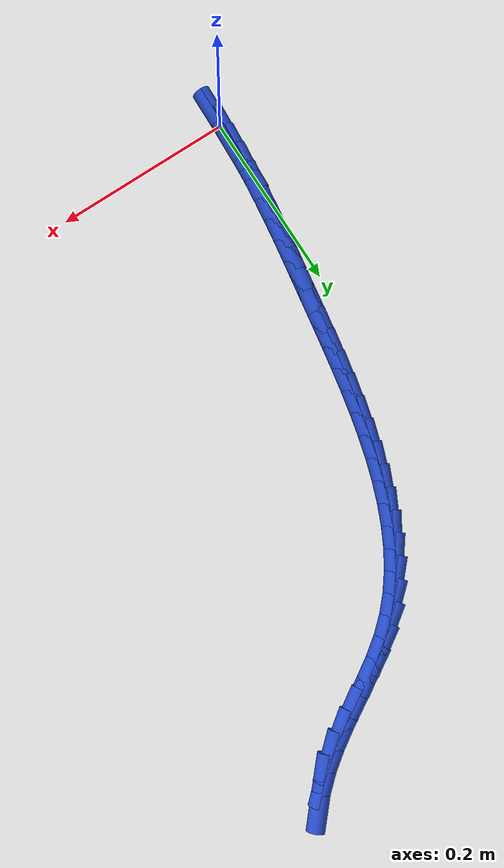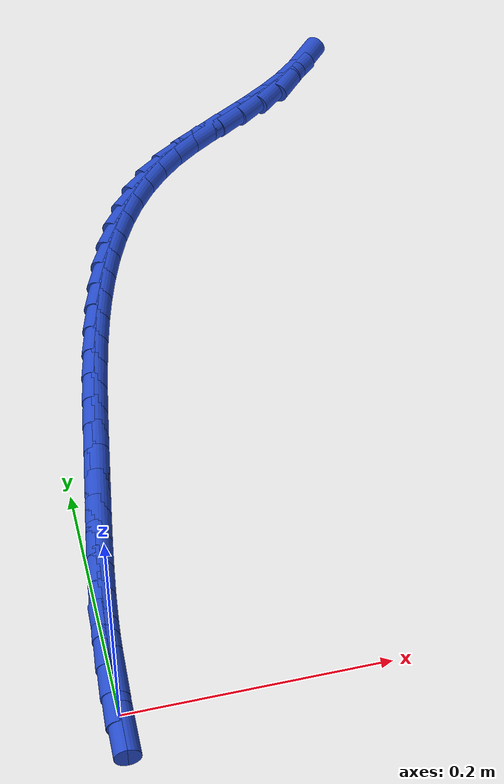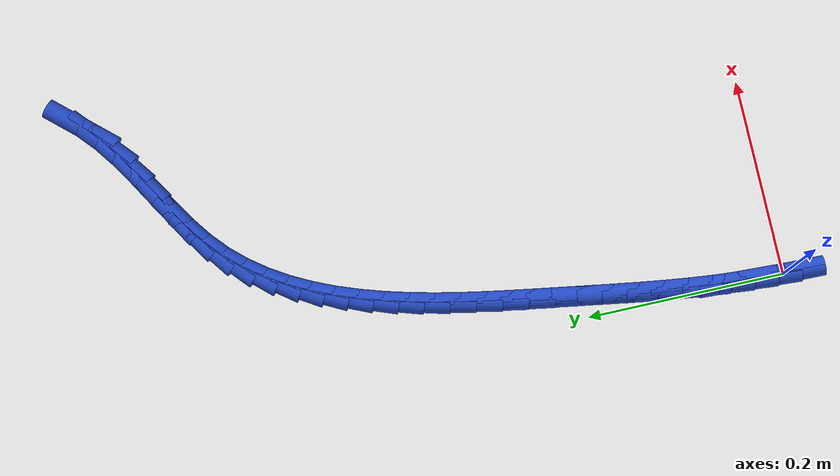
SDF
<sdf version="1.6">
 <world name="default">
  <model name="ground_plane">
   <static>1</static>
   <link name="link">
    <collision name="collision">
     <geometry><plane><normal>0 0 1</normal><size>100 100</size></plane></geometry>
     <surface><friction><ode><mu>100</mu><mu2>50</mu2></ode></friction></surface>
    </collision>
    <visual name="visual">
     <cast_shadows>0</cast_shadows>
     <geometry><plane><normal>0 0 1</normal><size>100 100</size></plane></geometry>
     <material>
      <script><uri>file://media/materials/scripts/gazebo.material</uri><name>Gazebo/WhiteGlow</name></script>
     </material>
    </visual>
   </link>
  </model>
  <model name="line">
   <link name="link_0">
    <pose>-8.673617379884035e-18 4.163336342344337e-17 0.01 0 1.57 1.5476793691538977</pose>
    <collision name="collision">
     <geometry><cylinder><radius>0.01</radius><length>0.08</length></cylinder></geometry>
    </collision>
    <visual name="visual">
     <material>
      <script><name>Gazebo/Blue</name><uri>file://media/materials/scripts/gazebo.material</uri></script>
     </material>
     <geometry><cylinder><radius>0.01</radius><length>0.08</length></cylinder></geometry>
    </visual>
   </link>
   <link name="link_1">
    <pose>0.0005523613203440264 0.023889948349005933 0.01 0 1.57 1.5161205672506612</pose>
    <collision name="collision">
     <geometry><cylinder><radius>0.01</radius><length>0.08</length></cylinder></geometry>
    </collision>
    <visual name="visual">
     <material>
      <script><name>Gazebo/Blue</name><uri>file://media/materials/scripts/gazebo.material</uri></script>
     </material>
     <geometry><cylinder><radius>0.01</radius><length>0.08</length></cylinder></geometry>
    </visual>
   </link>
   <link name="link_2">
    <pose>0.0018581088642134508 0.04774779951772081 0.01 0 1.57 1.488601115384985</pose>
    <collision name="collision">
     <geometry><cylinder><radius>0.01</radius><length>0.08</length></cylinder></geometry>
    </collision>
    <visual name="visual">
     <material>
      <script><name>Gazebo/Blue</name><uri>file://media/materials/scripts/gazebo.material</uri></script>
     </material>
     <geometry><cylinder><radius>0.01</radius><length>0.08</length></cylinder></geometry>
    </visual>
   </link>
   <link name="link_3">
    <pose>0.0038248384821236332 0.0716214349568103 0.01 0 1.57 1.465275217036072</pose>
    <collision name="collision">
     <geometry><cylinder><radius>0.01</radius><length>0.08</length></cylinder></geometry>
    </collision>
    <visual name="visual">
     <material>
      <script><name>Gazebo/Blue</name><uri>file://media/materials/scripts/gazebo.material</uri></script>
     </material>
     <geometry><cylinder><radius>0.01</radius><length>0.08</length></cylinder></geometry>
    </visual>
   </link>
   <link name="link_4">
    <pose>0.006360146024589938 0.09555873611693988 0.01 0 1.57 1.446221262091227</pose>
    <collision name="collision">
     <geometry><cylinder><radius>0.01</radius><length>0.08</length></cylinder></geometry>
    </collision>
    <visual name="visual">
     <material>
      <script><name>Gazebo/Blue</name><uri>file://media/materials/scripts/gazebo.material</uri></script>
     </material>
     <geometry><cylinder><radius>0.01</radius><length>0.08</length></cylinder></geometry>
    </visual>
   </link>
   <link name="link_5">
    <pose>0.009371627342127748 0.11960758444877528 0.01 0 1.57 1.4314535750246575</pose>
    <collision name="collision">
     <geometry><cylinder><radius>0.01</radius><length>0.08</length></cylinder></geometry>
    </collision>
    <visual name="visual">
     <material>
      <script><name>Gazebo/Blue</name><uri>file://media/materials/scripts/gazebo.material</uri></script>
     </material>
     <geometry><cylinder><radius>0.01</radius><length>0.08</length></cylinder></geometry>
    </visual>
   </link>
   <link name="link_6">
    <pose>0.012766878285252423 0.14381586140298203 0.01 0 1.57 1.420934022808521</pose>
    <collision name="collision">
     <geometry><cylinder><radius>0.01</radius><length>0.08</length></cylinder></geometry>
    </collision>
    <visual name="visual">
     <material>
      <script><name>Gazebo/Blue</name><uri>file://media/materials/scripts/gazebo.material</uri></script>
     </material>
     <geometry><cylinder><radius>0.01</radius><length>0.08</length></cylinder></geometry>
    </visual>
   </link>
   <link name="link_7">
    <pose>0.016453494704479335 0.16823144843022567 0.01 0 1.57 1.4145823721288462</pose>
    <collision name="collision">
     <geometry><cylinder><radius>0.01</radius><length>0.08</length></cylinder></geometry>
    </collision>
    <visual name="visual">
     <material>
      <script><name>Gazebo/Blue</name><uri>file://media/materials/scripts/gazebo.material</uri></script>
     </material>
     <geometry><cylinder><radius>0.01</radius><length>0.08</length></cylinder></geometry>
    </visual>
   </link>
   <link name="link_8">
    <pose>0.020339072450323858 0.19290222698117188 0.01 0 1.57 1.4122847955080255</pose>
    <collision name="collision">
     <geometry><cylinder><radius>0.01</radius><length>0.08</length></cylinder></geometry>
    </collision>
    <visual name="visual">
     <material>
      <script><name>Gazebo/Blue</name><uri>file://media/materials/scripts/gazebo.material</uri></script>
     </material>
     <geometry><cylinder><radius>0.01</radius><length>0.08</length></cylinder></geometry>
    </visual>
   </link>
   <link name="link_9">
    <pose>0.024331207373301356 0.21787607850648616 0.01 0 1.57 1.4130104548541869</pose>
    <collision name="collision">
     <geometry><cylinder><radius>0.01</radius><length>0.08</length></cylinder></geometry>
    </collision>
    <visual name="visual">
     <material>
      <script><name>Gazebo/Blue</name><uri>file://media/materials/scripts/gazebo.material</uri></script>
     </material>
     <geometry><cylinder><radius>0.01</radius><length>0.08</length></cylinder></geometry>
    </visual>
   </link>
   <link name="link_10">
    <pose>0.02835785197488939 0.24318362134552063 0.01 0 1.57 1.4104538971865246</pose>
    <collision name="collision">
     <geometry><cylinder><radius>0.01</radius><length>0.08</length></cylinder></geometry>
    </collision>
    <visual name="visual">
     <material>
      <script><name>Gazebo/Blue</name><uri>file://media/materials/scripts/gazebo.material</uri></script>
     </material>
     <geometry><cylinder><radius>0.01</radius><length>0.08</length></cylinder></geometry>
    </visual>
   </link>
   <link name="link_11">
    <pose>0.032490143676954665 0.26873404830335434 0.01 0 1.57 1.4020292559087015</pose>
    <collision name="collision">
     <geometry><cylinder><radius>0.01</radius><length>0.08</length></cylinder></geometry>
    </collision>
    <visual name="visual">
     <material>
      <script><name>Gazebo/Blue</name><uri>file://media/materials/scripts/gazebo.material</uri></script>
     </material>
     <geometry><cylinder><radius>0.01</radius><length>0.08</length></cylinder></geometry>
    </visual>
   </link>
   <link name="link_12">
    <pose>0.03686065984181403 0.29438444908947103 0.01 0 1.57 1.387705604547025</pose>
    <collision name="collision">
     <geometry><cylinder><radius>0.01</radius><length>0.08</length></cylinder></geometry>
    </collision>
    <visual name="visual">
     <material>
      <script><name>Gazebo/Blue</name><uri>file://media/materials/scripts/gazebo.material</uri></script>
     </material>
     <geometry><cylinder><radius>0.01</radius><length>0.08</length></cylinder></geometry>
    </visual>
   </link>
   <link name="link_13">
    <pose>0.041602213613726735 0.3199917134624919 0.01 0 1.57 1.3673109148056917</pose>
    <collision name="collision">
     <geometry><cylinder><radius>0.01</radius><length>0.08</length></cylinder></geometry>
    </collision>
    <visual name="visual">
     <material>
      <script><name>Gazebo/Blue</name><uri>file://media/materials/scripts/gazebo.material</uri></script>
     </material>
     <geometry><cylinder><radius>0.01</radius><length>0.08</length></cylinder></geometry>
    </visual>
   </link>
   <link name="link_14">
    <pose>0.04684761813695201 0.34541273118103794 0.01 0 1.57 1.34053101223798</pose>
    <collision name="collision">
     <geometry><cylinder><radius>0.01</radius><length>0.08</length></cylinder></geometry>
    </collision>
    <visual name="visual">
     <material>
      <script><name>Gazebo/Blue</name><uri>file://media/materials/scripts/gazebo.material</uri></script>
     </material>
     <geometry><cylinder><radius>0.01</radius><length>0.08</length></cylinder></geometry>
    </visual>
   </link>
   <link name="link_15">
    <pose>0.05272968655574909 0.3705043920037303 0.01 0 1.57 1.3069193155320888</pose>
    <collision name="collision">
     <geometry><cylinder><radius>0.01</radius><length>0.08</length></cylinder></geometry>
    </collision>
    <visual name="visual">
     <material>
      <script><name>Gazebo/Blue</name><uri>file://media/materials/scripts/gazebo.material</uri></script>
     </material>
     <geometry><cylinder><radius>0.01</radius><length>0.08</length></cylinder></geometry>
    </visual>
   </link>
   <link name="link_16">
    <pose>0.05938123201437724 0.39512358568919054 0.01 0 1.57 1.2659123271466093</pose>
    <collision name="collision">
     <geometry><cylinder><radius>0.01</radius><length>0.08</length></cylinder></geometry>
    </collision>
    <visual name="visual">
     <material>
      <script><name>Gazebo/Blue</name><uri>file://media/materials/scripts/gazebo.material</uri></script>
     </material>
     <geometry><cylinder><radius>0.01</radius><length>0.08</length></cylinder></geometry>
    </visual>
   </link>
   <link name="link_17">
    <pose>0.06693506765709567 0.4191272019960395 0.01 0 1.57 1.2168586252389164</pose>
    <collision name="collision">
     <geometry><cylinder><radius>0.01</radius><length>0.08</length></cylinder></geometry>
    </collision>
    <visual name="visual">
     <material>
      <script><name>Gazebo/Blue</name><uri>file://media/materials/scripts/gazebo.material</uri></script>
     </material>
     <geometry><cylinder><radius>0.01</radius><length>0.08</length></cylinder></geometry>
    </visual>
   </link>
   <link name="link_18">
    <pose>0.07552400662816358 0.4423721306828983 0.01 0 1.57 1.1590722093257406</pose>
    <collision name="collision">
     <geometry><cylinder><radius>0.01</radius><length>0.08</length></cylinder></geometry>
    </collision>
    <visual name="visual">
     <material>
      <script><name>Gazebo/Blue</name><uri>file://media/materials/scripts/gazebo.material</uri></script>
     </material>
     <geometry><cylinder><radius>0.01</radius><length>0.08</length></cylinder></geometry>
    </visual>
   </link>
   <link name="link_19">
    <pose>0.08528086207184031 0.4647152615083884 0.01 0 1.57 1.0919236868609377</pose>
    <collision name="collision">
     <geometry><cylinder><radius>0.01</radius><length>0.08</length></cylinder></geometry>
    </collision>
    <visual name="visual">
     <material>
      <script><name>Gazebo/Blue</name><uri>file://media/materials/scripts/gazebo.material</uri></script>
     </material>
     <geometry><cylinder><radius>0.01</radius><length>0.08</length></cylinder></geometry>
    </visual>
   </link>
   <link name="link_20">
    <pose>0.09633844713238501 0.48601348423113067 0.01 0 1.57 1.0149820266887857</pose>
    <collision name="collision">
     <geometry><cylinder><radius>0.01</radius><length>0.08</length></cylinder></geometry>
    </collision>
    <visual name="visual">
     <material>
      <script><name>Gazebo/Blue</name><uri>file://media/materials/scripts/gazebo.material</uri></script>
     </material>
     <geometry><cylinder><radius>0.01</radius><length>0.08</length></cylinder></geometry>
    </visual>
   </link>
   <link name="link_21">
    <pose>0.10882957495405696 0.5061236886097465 0.01 0 1.57 0.9282099897694731</pose>
    <collision name="collision">
     <geometry><cylinder><radius>0.01</radius><length>0.08</length></cylinder></geometry>
    </collision>
    <visual name="visual">
     <material>
      <script><name>Gazebo/Blue</name><uri>file://media/materials/scripts/gazebo.material</uri></script>
     </material>
     <geometry><cylinder><radius>0.01</radius><length>0.08</length></cylinder></geometry>
    </visual>
   </link>
   <link name="link_22">
    <pose>0.12288705868111538 0.5249027644028571 0.01 0 1.57 0.8321913982158111</pose>
    <collision name="collision">
     <geometry><cylinder><radius>0.01</radius><length>0.08</length></cylinder></geometry>
    </collision>
    <visual name="visual">
     <material>
      <script><name>Gazebo/Blue</name><uri>file://media/materials/scripts/gazebo.material</uri></script>
     </material>
     <geometry><cylinder><radius>0.01</radius><length>0.08</length></cylinder></geometry>
    </visual>
   </link>
   <link name="link_23">
    <pose>0.13864371145781954 0.5422076013690835 0.01 0 1.57 0.72850812107362</pose>
    <collision name="collision">
     <geometry><cylinder><radius>0.01</radius><length>0.08</length></cylinder></geometry>
    </collision>
    <visual name="visual">
     <material>
      <script><name>Gazebo/Blue</name><uri>file://media/materials/scripts/gazebo.material</uri></script>
     </material>
     <geometry><cylinder><radius>0.01</radius><length>0.08</length></cylinder></geometry>
    </visual>
   </link>
   <link name="link_24">
    <pose>0.15622931838459708 0.5578980851390335 0.01 0 1.57 0.6333008512239515</pose>
    <collision name="collision">
     <geometry><cylinder><radius>0.01</radius><length>0.08</length></cylinder></geometry>
    </collision>
    <visual name="visual">
     <material>
      <script><name>Gazebo/Blue</name><uri>file://media/materials/scripts/gazebo.material</uri></script>
     </material>
     <geometry><cylinder><radius>0.01</radius><length>0.08</length></cylinder></geometry>
    </visual>
   </link>
   <link name="link_25">
    <pose>0.17553398487890415 0.5720712345183899 0.01 0 1.57 0.5705224568081297</pose>
    <collision name="collision">
     <geometry><cylinder><radius>0.01</radius><length>0.08</length></cylinder></geometry>
    </collision>
    <visual name="visual">
     <material>
      <script><name>Gazebo/Blue</name><uri>file://media/materials/scripts/gazebo.material</uri></script>
     </material>
     <geometry><cylinder><radius>0.01</radius><length>0.08</length></cylinder></geometry>
    </visual>
   </link>
   <link name="link_26">
    <pose>0.19603845889019939 0.5852290765092869 0.01 0 1.57 0.5403216537165627</pose>
    <collision name="collision">
     <geometry><cylinder><radius>0.01</radius><length>0.08</length></cylinder></geometry>
    </collision>
    <visual name="visual">
     <material>
      <script><name>Gazebo/Blue</name><uri>file://media/materials/scripts/gazebo.material</uri></script>
     </material>
     <geometry><cylinder><radius>0.01</radius><length>0.08</length></cylinder></geometry>
    </visual>
   </link>
   <link name="link_27">
    <pose>0.2171834459353987 0.5979132551103803 0.01 0 1.57 0.5409886579165198</pose>
    <collision name="collision">
     <geometry><cylinder><radius>0.01</radius><length>0.08</length></cylinder></geometry>
    </collision>
    <visual name="visual">
     <material>
      <script><name>Gazebo/Blue</name><uri>file://media/materials/scripts/gazebo.material</uri></script>
     </material>
     <geometry><cylinder><radius>0.01</radius><length>0.08</length></cylinder></geometry>
    </visual>
   </link>
   <link name="link_28">
    <pose>0.23840965153141822 0.6106654143203258 0.01 0 1.57 0.5721453256293433</pose>
    <collision name="collision">
     <geometry><cylinder><radius>0.01</radius><length>0.08</length></cylinder></geometry>
    </collision>
    <visual name="visual">
     <material>
      <script><name>Gazebo/Blue</name><uri>file://media/materials/scripts/gazebo.material</uri></script>
     </material>
     <geometry><cylinder><radius>0.01</radius><length>0.08</length></cylinder></geometry>
    </visual>
   </link>
   <link name="link_29">
    <pose>0.25915778119517385 0.6240271981377796 0.01 0 1.57 0.6346759686867859</pose>
    <collision name="collision">
     <geometry><cylinder><radius>0.01</radius><length>0.08</length></cylinder></geometry>
    </collision>
    <visual name="visual">
     <material>
      <script><name>Gazebo/Blue</name><uri>file://media/materials/scripts/gazebo.material</uri></script>
     </material>
     <geometry><cylinder><radius>0.01</radius><length>0.08</length></cylinder></geometry>
    </visual>
   </link>
   <link name="link_30">
    <pose>0.2788685404435815 0.6385402505613973 0.01 0 1.57 0.7298463462555387</pose>
    <collision name="collision">
     <geometry><cylinder><radius>0.01</radius><length>0.08</length></cylinder></geometry>
    </collision>
    <visual name="visual">
     <material>
      <script><name>Gazebo/Blue</name><uri>file://media/materials/scripts/gazebo.material</uri></script>
     </material>
     <geometry><cylinder><radius>0.01</radius><length>0.08</length></cylinder></geometry>
    </visual>
   </link>
   <link name="link_31">
    <pose>0.2969828186777341 0.6547460239418198 0.01 0 1.57 0.8434917342189491</pose>
    <collision name="collision">
     <geometry><cylinder><radius>0.01</radius><length>0.08</length></cylinder></geometry>
    </collision>
    <visual name="visual">
     <material>
      <script><name>Gazebo/Blue</name><uri>file://media/materials/scripts/gazebo.material</uri></script>
     </material>
     <geometry><cylinder><radius>0.01</radius><length>0.08</length></cylinder></geometry>
    </visual>
   </link>
   <link name="link_280">
    <pose>-1.8214596497756474e-17 2.706168622523819e-16 0.01 0 1.57 1.5465256368190279</pose>
    <collision name="collision">
     <geometry><cylinder><radius>0.01</radius><length>0.08</length></cylinder></geometry>
    </collision>
    <visual name="visual">
     <material>
      <script><name>Gazebo/Blue</name><uri>file://media/materials/scripts/gazebo.material</uri></script>
     </material>
     <geometry><cylinder><radius>0.01</radius><length>0.08</length></cylinder></geometry>
    </visual>
   </link>
   <link name="link_281">
    <pose>0.000579728018202579 0.023881240357991825 0.01 0 1.57 1.5079585851820752</pose>
    <collision name="collision">
     <geometry><cylinder><radius>0.01</radius><length>0.08</length></cylinder></geometry>
    </collision>
    <visual name="visual">
     <material>
      <script><name>Gazebo/Blue</name><uri>file://media/materials/scripts/gazebo.material</uri></script>
     </material>
     <geometry><cylinder><radius>0.01</radius><length>0.08</length></cylinder></geometry>
    </visual>
   </link>
   <link name="link_282">
    <pose>0.0020770424470819143 0.04767813558960677 0.01 0 1.57 1.527260018733823</pose>
    <collision name="collision">
     <geometry><cylinder><radius>0.01</radius><length>0.08</length></cylinder></geometry>
    </collision>
    <visual name="visual">
     <material>
      <script><name>Gazebo/Blue</name><uri>file://media/materials/scripts/gazebo.material</uri></script>
     </material>
     <geometry><cylinder><radius>0.01</radius><length>0.08</length></cylinder></geometry>
    </visual>
   </link>
  </model>
 </world>
</sdf>
